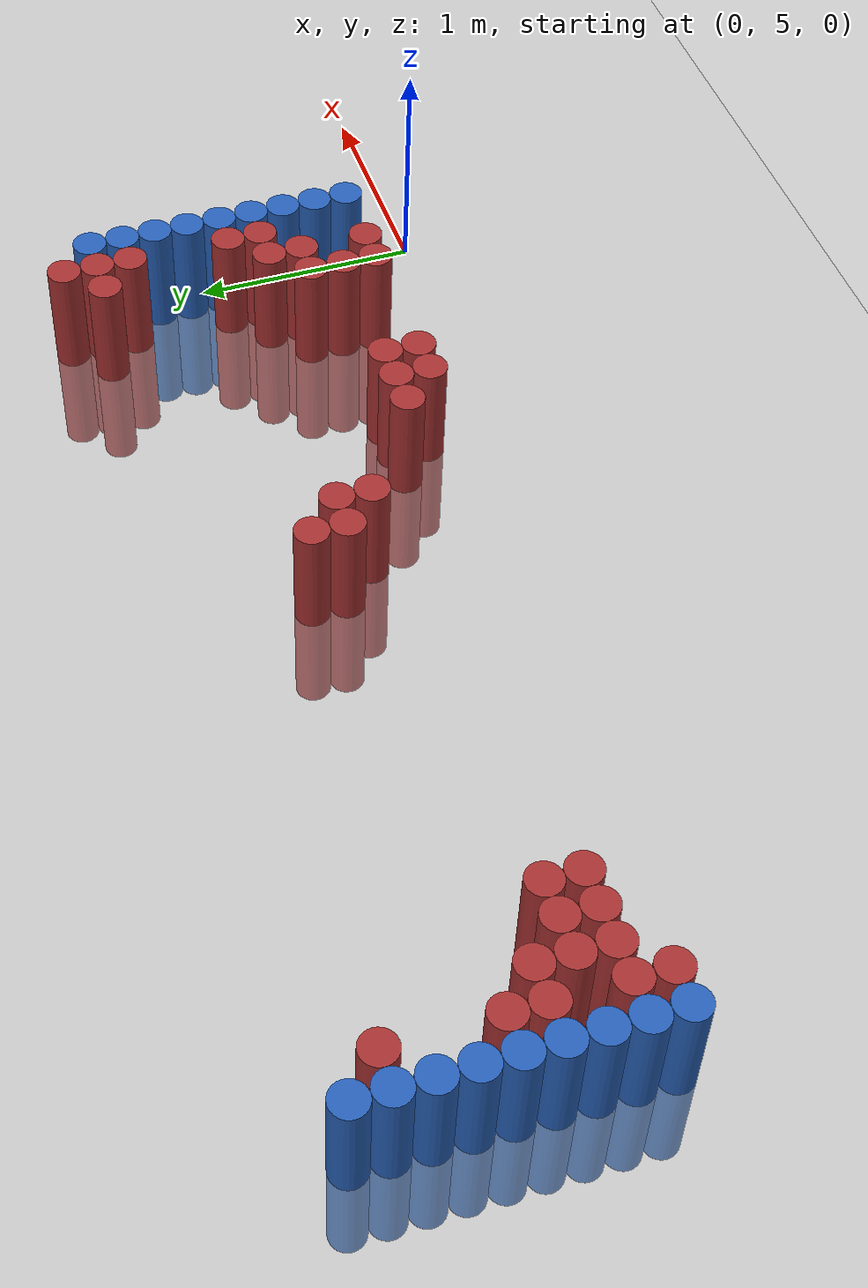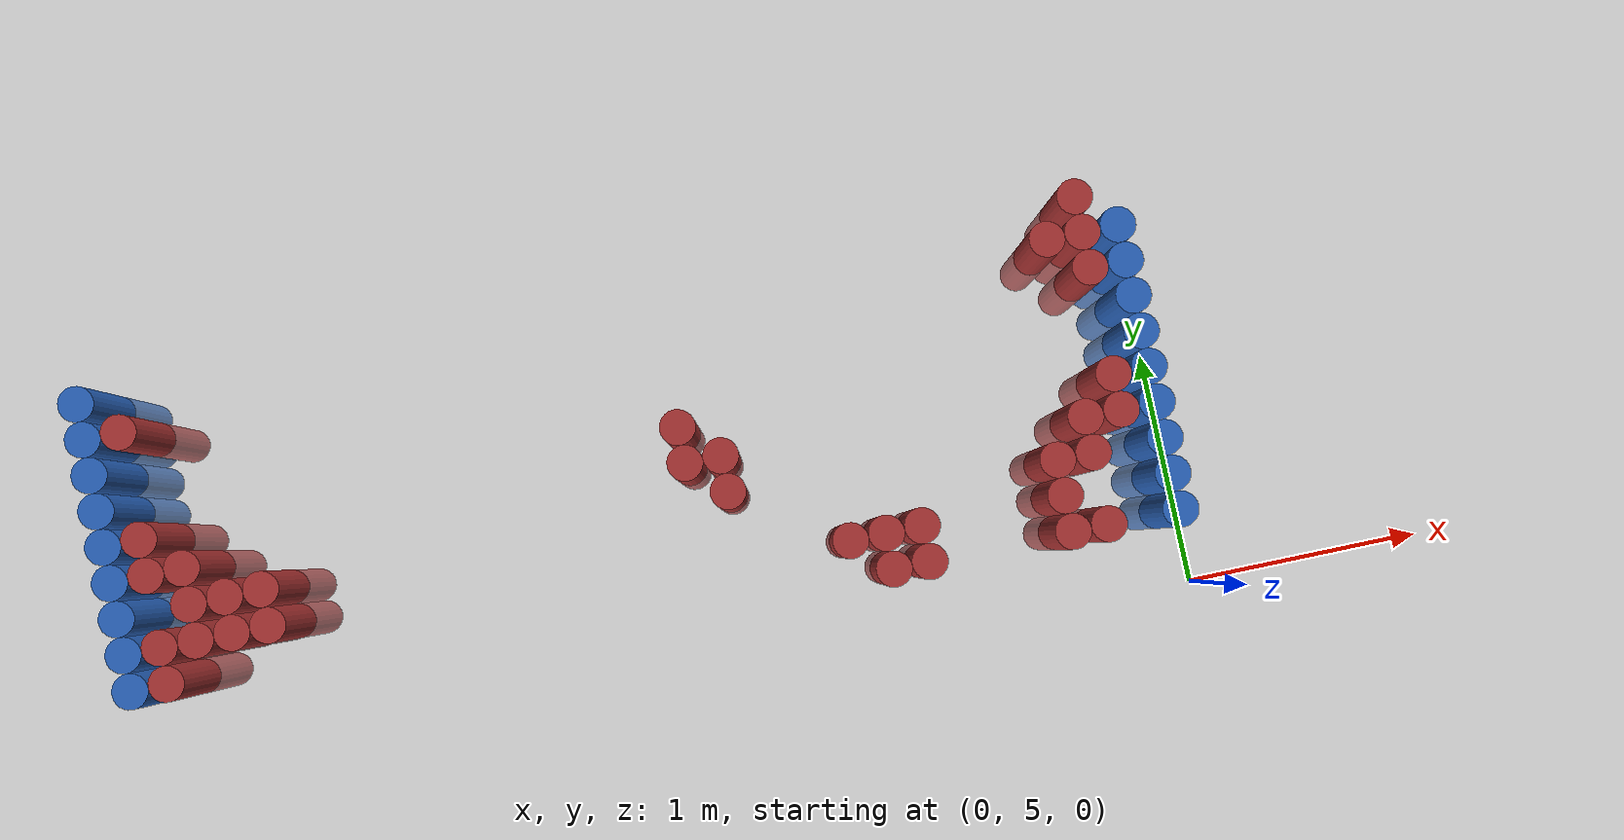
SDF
<sdf version="1.6">
 <world name="default">
  <model name="ground_plane">
   <static>1</static>
   <link name="link">
    <collision name="collision">
     <geometry><plane><normal>0 0 1</normal><size>100 100</size></plane></geometry>
     <surface><friction><ode><mu>100</mu><mu2>50</mu2></ode></friction></surface>
    </collision>
    <visual name="visual">
     <cast_shadows>0</cast_shadows>
     <geometry><plane><normal>0 0 1</normal><size>100 100</size></plane></geometry>
     <material>
      <script><uri>file://media/materials/scripts/gazebo.material</uri><name>Gazebo/Grey</name></script>
     </material>
    </visual>
   </link>
  </model>
  <model name="unit_cylinder_98">
   <static>1</static>
   <pose>-4.425000 5.475000 0.000000 0.000000 0.000000 0.000000</pose>
   <link name="link">
    <inertial>
     <mass>1</mass>
     <inertia><ixx>0.145833</ixx><ixy>0</ixy><ixz>0</ixz><iyy>0.145833</iyy><iyz>0</iyz><izz>0.125</izz></inertia>
    </inertial>
    <collision name="collision">
     <geometry><cylinder><radius>0.075000</radius><length>1</length></cylinder></geometry>
    </collision>
    <visual name="visual">
     <geometry><cylinder><radius>0.075000</radius><length>1</length></cylinder></geometry>
     <material>
      <ambient>0.152000 0.379000 0.720000 1</ambient>
      <diffuse>0.152000 0.379000 0.720000 1</diffuse>
     </material>
     <material>
      <script><name>Gazebo/Grey</name><uri>file://media/materials/scripts/gazebo.material</uri></script>
     </material>
    </visual>
   </link>
  </model>
  <model name="unit_cylinder_99">
   <static>1</static>
   <pose>-4.425000 5.625000 0.000000 0.000000 0.000000 0.000000</pose>
   <link name="link">
    <inertial>
     <mass>1</mass>
     <inertia><ixx>0.145833</ixx><ixy>0</ixy><ixz>0</ixz><iyy>0.145833</iyy><iyz>0</iyz><izz>0.125</izz></inertia>
    </inertial>
    <collision name="collision">
     <geometry><cylinder><radius>0.075000</radius><length>1</length></cylinder></geometry>
    </collision>
    <visual name="visual">
     <geometry><cylinder><radius>0.075000</radius><length>1</length></cylinder></geometry>
     <material>
      <ambient>0.152000 0.379000 0.720000 1</ambient>
      <diffuse>0.152000 0.379000 0.720000 1</diffuse>
     </material>
     <material>
      <script><name>Gazebo/Grey</name><uri>file://media/materials/scripts/gazebo.material</uri></script>
     </material>
    </visual>
   </link>
  </model>
  <model name="unit_cylinder_100">
   <static>1</static>
   <pose>-4.425000 5.775000 0.000000 0.000000 0.000000 0.000000</pose>
   <link name="link">
    <inertial>
     <mass>1</mass>
     <inertia><ixx>0.145833</ixx><ixy>0</ixy><ixz>0</ixz><iyy>0.145833</iyy><iyz>0</iyz><izz>0.125</izz></inertia>
    </inertial>
    <collision name="collision">
     <geometry><cylinder><radius>0.075000</radius><length>1</length></cylinder></geometry>
    </collision>
    <visual name="visual">
     <geometry><cylinder><radius>0.075000</radius><length>1</length></cylinder></geometry>
     <material>
      <ambient>0.152000 0.379000 0.720000 1</ambient>
      <diffuse>0.152000 0.379000 0.720000 1</diffuse>
     </material>
     <material>
      <script><name>Gazebo/Grey</name><uri>file://media/materials/scripts/gazebo.material</uri></script>
     </material>
    </visual>
   </link>
  </model>
  <model name="unit_cylinder_101">
   <static>1</static>
   <pose>-4.425000 5.925000 0.000000 0.000000 0.000000 0.000000</pose>
   <link name="link">
    <inertial>
     <mass>1</mass>
     <inertia><ixx>0.145833</ixx><ixy>0</ixy><ixz>0</ixz><iyy>0.145833</iyy><iyz>0</iyz><izz>0.125</izz></inertia>
    </inertial>
    <collision name="collision">
     <geometry><cylinder><radius>0.075000</radius><length>1</length></cylinder></geometry>
    </collision>
    <visual name="visual">
     <geometry><cylinder><radius>0.075000</radius><length>1</length></cylinder></geometry>
     <material>
      <ambient>0.152000 0.379000 0.720000 1</ambient>
      <diffuse>0.152000 0.379000 0.720000 1</diffuse>
     </material>
     <material>
      <script><name>Gazebo/Grey</name><uri>file://media/materials/scripts/gazebo.material</uri></script>
     </material>
    </visual>
   </link>
  </model>
  <model name="unit_cylinder_102">
   <static>1</static>
   <pose>-4.425000 6.075000 0.000000 0.000000 0.000000 0.000000</pose>
   <link name="link">
    <inertial>
     <mass>1</mass>
     <inertia><ixx>0.145833</ixx><ixy>0</ixy><ixz>0</ixz><iyy>0.145833</iyy><iyz>0</iyz><izz>0.125</izz></inertia>
    </inertial>
    <collision name="collision">
     <geometry><cylinder><radius>0.075000</radius><length>1</length></cylinder></geometry>
    </collision>
    <visual name="visual">
     <geometry><cylinder><radius>0.075000</radius><length>1</length></cylinder></geometry>
     <material>
      <ambient>0.152000 0.379000 0.720000 1</ambient>
      <diffuse>0.152000 0.379000 0.720000 1</diffuse>
     </material>
     <material>
      <script><name>Gazebo/Grey</name><uri>file://media/materials/scripts/gazebo.material</uri></script>
     </material>
    </visual>
   </link>
  </model>
  <model name="unit_cylinder_103">
   <static>1</static>
   <pose>-4.425000 6.225000 0.000000 0.000000 0.000000 0.000000</pose>
   <link name="link">
    <inertial>
     <mass>1</mass>
     <inertia><ixx>0.145833</ixx><ixy>0</ixy><ixz>0</ixz><iyy>0.145833</iyy><iyz>0</iyz><izz>0.125</izz></inertia>
    </inertial>
    <collision name="collision">
     <geometry><cylinder><radius>0.075000</radius><length>1</length></cylinder></geometry>
    </collision>
    <visual name="visual">
     <geometry><cylinder><radius>0.075000</radius><length>1</length></cylinder></geometry>
     <material>
      <ambient>0.152000 0.379000 0.720000 1</ambient>
      <diffuse>0.152000 0.379000 0.720000 1</diffuse>
     </material>
     <material>
      <script><name>Gazebo/Grey</name><uri>file://media/materials/scripts/gazebo.material</uri></script>
     </material>
    </visual>
   </link>
  </model>
  <model name="unit_cylinder_104">
   <static>1</static>
   <pose>-4.425000 6.375000 0.000000 0.000000 0.000000 0.000000</pose>
   <link name="link">
    <inertial>
     <mass>1</mass>
     <inertia><ixx>0.145833</ixx><ixy>0</ixy><ixz>0</ixz><iyy>0.145833</iyy><iyz>0</iyz><izz>0.125</izz></inertia>
    </inertial>
    <collision name="collision">
     <geometry><cylinder><radius>0.075000</radius><length>1</length></cylinder></geometry>
    </collision>
    <visual name="visual">
     <geometry><cylinder><radius>0.075000</radius><length>1</length></cylinder></geometry>
     <material>
      <ambient>0.152000 0.379000 0.720000 1</ambient>
      <diffuse>0.152000 0.379000 0.720000 1</diffuse>
     </material>
     <material>
      <script><name>Gazebo/Grey</name><uri>file://media/materials/scripts/gazebo.material</uri></script>
     </material>
    </visual>
   </link>
  </model>
  <model name="unit_cylinder_105">
   <static>1</static>
   <pose>-4.425000 6.525000 0.000000 0.000000 0.000000 0.000000</pose>
   <link name="link">
    <inertial>
     <mass>1</mass>
     <inertia><ixx>0.145833</ixx><ixy>0</ixy><ixz>0</ixz><iyy>0.145833</iyy><iyz>0</iyz><izz>0.125</izz></inertia>
    </inertial>
    <collision name="collision">
     <geometry><cylinder><radius>0.075000</radius><length>1</length></cylinder></geometry>
    </collision>
    <visual name="visual">
     <geometry><cylinder><radius>0.075000</radius><length>1</length></cylinder></geometry>
     <material>
      <ambient>0.152000 0.379000 0.720000 1</ambient>
      <diffuse>0.152000 0.379000 0.720000 1</diffuse>
     </material>
     <material>
      <script><name>Gazebo/Grey</name><uri>file://media/materials/scripts/gazebo.material</uri></script>
     </material>
    </visual>
   </link>
  </model>
  <model name="unit_cylinder_106">
   <static>1</static>
   <pose>-4.425000 6.675000 0.000000 0.000000 0.000000 0.000000</pose>
   <link name="link">
    <inertial>
     <mass>1</mass>
     <inertia><ixx>0.145833</ixx><ixy>0</ixy><ixz>0</ixz><iyy>0.145833</iyy><iyz>0</iyz><izz>0.125</izz></inertia>
    </inertial>
    <collision name="collision">
     <geometry><cylinder><radius>0.075000</radius><length>1</length></cylinder></geometry>
    </collision>
    <visual name="visual">
     <geometry><cylinder><radius>0.075000</radius><length>1</length></cylinder></geometry>
     <material>
      <ambient>0.152000 0.379000 0.720000 1</ambient>
      <diffuse>0.152000 0.379000 0.720000 1</diffuse>
     </material>
     <material>
      <script><name>Gazebo/Grey</name><uri>file://media/materials/scripts/gazebo.material</uri></script>
     </material>
    </visual>
   </link>
  </model>
  <model name="unit_cylinder_126">
   <static>1</static>
   <pose>-4.275000 5.475000 0.000000 0.000000 0.000000 0.000000</pose>
   <link name="link">
    <inertial>
     <mass>1</mass>
     <inertia><ixx>0.145833</ixx><ixy>0</ixy><ixz>0</ixz><iyy>0.145833</iyy><iyz>0</iyz><izz>0.125</izz></inertia>
    </inertial>
    <collision name="collision">
     <geometry><cylinder><radius>0.075000</radius><length>1</length></cylinder></geometry>
    </collision>
    <visual name="visual">
     <geometry><cylinder><radius>0.075000</radius><length>1</length></cylinder></geometry>
     <material>
      <ambient>0.648000 0.192000 0.192000 1</ambient>
      <diffuse>0.648000 0.192000 0.192000 1</diffuse>
     </material>
     <material>
      <script><name>Gazebo/Grey</name><uri>file://media/materials/scripts/gazebo.material</uri></script>
     </material>
    </visual>
   </link>
  </model>
  <model name="unit_cylinder_127">
   <static>1</static>
   <pose>-4.275000 5.625000 0.000000 0.000000 0.000000 0.000000</pose>
   <link name="link">
    <inertial>
     <mass>1</mass>
     <inertia><ixx>0.145833</ixx><ixy>0</ixy><ixz>0</ixz><iyy>0.145833</iyy><iyz>0</iyz><izz>0.125</izz></inertia>
    </inertial>
    <collision name="collision">
     <geometry><cylinder><radius>0.075000</radius><length>1</length></cylinder></geometry>
    </collision>
    <visual name="visual">
     <geometry><cylinder><radius>0.075000</radius><length>1</length></cylinder></geometry>
     <material>
      <ambient>0.648000 0.192000 0.192000 1</ambient>
      <diffuse>0.648000 0.192000 0.192000 1</diffuse>
     </material>
     <material>
      <script><name>Gazebo/Grey</name><uri>file://media/materials/scripts/gazebo.material</uri></script>
     </material>
    </visual>
   </link>
  </model>
  <model name="unit_cylinder_128">
   <static>1</static>
   <pose>-4.275000 5.925000 0.000000 0.000000 0.000000 0.000000</pose>
   <link name="link">
    <inertial>
     <mass>1</mass>
     <inertia><ixx>0.145833</ixx><ixy>0</ixy><ixz>0</ixz><iyy>0.145833</iyy><iyz>0</iyz><izz>0.125</izz></inertia>
    </inertial>
    <collision name="collision">
     <geometry><cylinder><radius>0.075000</radius><length>1</length></cylinder></geometry>
    </collision>
    <visual name="visual">
     <geometry><cylinder><radius>0.075000</radius><length>1</length></cylinder></geometry>
     <material>
      <ambient>0.648000 0.192000 0.192000 1</ambient>
      <diffuse>0.648000 0.192000 0.192000 1</diffuse>
     </material>
     <material>
      <script><name>Gazebo/Grey</name><uri>file://media/materials/scripts/gazebo.material</uri></script>
     </material>
    </visual>
   </link>
  </model>
  <model name="unit_cylinder_129">
   <static>1</static>
   <pose>-4.275000 6.075000 0.000000 0.000000 0.000000 0.000000</pose>
   <link name="link">
    <inertial>
     <mass>1</mass>
     <inertia><ixx>0.145833</ixx><ixy>0</ixy><ixz>0</ixz><iyy>0.145833</iyy><iyz>0</iyz><izz>0.125</izz></inertia>
    </inertial>
    <collision name="collision">
     <geometry><cylinder><radius>0.075000</radius><length>1</length></cylinder></geometry>
    </collision>
    <visual name="visual">
     <geometry><cylinder><radius>0.075000</radius><length>1</length></cylinder></geometry>
     <material>
      <ambient>0.648000 0.192000 0.192000 1</ambient>
      <diffuse>0.648000 0.192000 0.192000 1</diffuse>
     </material>
     <material>
      <script><name>Gazebo/Grey</name><uri>file://media/materials/scripts/gazebo.material</uri></script>
     </material>
    </visual>
   </link>
  </model>
  <model name="unit_cylinder_130">
   <static>1</static>
   <pose>-4.275000 6.525000 0.000000 0.000000 0.000000 0.000000</pose>
   <link name="link">
    <inertial>
     <mass>1</mass>
     <inertia><ixx>0.145833</ixx><ixy>0</ixy><ixz>0</ixz><iyy>0.145833</iyy><iyz>0</iyz><izz>0.125</izz></inertia>
    </inertial>
    <collision name="collision">
     <geometry><cylinder><radius>0.075000</radius><length>1</length></cylinder></geometry>
    </collision>
    <visual name="visual">
     <geometry><cylinder><radius>0.075000</radius><length>1</length></cylinder></geometry>
     <material>
      <ambient>0.648000 0.192000 0.192000 1</ambient>
      <diffuse>0.648000 0.192000 0.192000 1</diffuse>
     </material>
     <material>
      <script><name>Gazebo/Grey</name><uri>file://media/materials/scripts/gazebo.material</uri></script>
     </material>
    </visual>
   </link>
  </model>
  <model name="unit_cylinder_143">
   <static>1</static>
   <pose>-4.125000 5.625000 0.000000 0.000000 0.000000 0.000000</pose>
   <link name="link">
    <inertial>
     <mass>1</mass>
     <inertia><ixx>0.145833</ixx><ixy>0</ixy><ixz>0</ixz><iyy>0.145833</iyy><iyz>0</iyz><izz>0.125</izz></inertia>
    </inertial>
    <collision name="collision">
     <geometry><cylinder><radius>0.075000</radius><length>1</length></cylinder></geometry>
    </collision>
    <visual name="visual">
     <geometry><cylinder><radius>0.075000</radius><length>1</length></cylinder></geometry>
     <material>
      <ambient>0.648000 0.192000 0.192000 1</ambient>
      <diffuse>0.648000 0.192000 0.192000 1</diffuse>
     </material>
     <material>
      <script><name>Gazebo/Grey</name><uri>file://media/materials/scripts/gazebo.material</uri></script>
     </material>
    </visual>
   </link>
  </model>
  <model name="unit_cylinder_144">
   <static>1</static>
   <pose>-4.125000 5.775000 0.000000 0.000000 0.000000 0.000000</pose>
   <link name="link">
    <inertial>
     <mass>1</mass>
     <inertia><ixx>0.145833</ixx><ixy>0</ixy><ixz>0</ixz><iyy>0.145833</iyy><iyz>0</iyz><izz>0.125</izz></inertia>
    </inertial>
    <collision name="collision">
     <geometry><cylinder><radius>0.075000</radius><length>1</length></cylinder></geometry>
    </collision>
    <visual name="visual">
     <geometry><cylinder><radius>0.075000</radius><length>1</length></cylinder></geometry>
     <material>
      <ambient>0.648000 0.192000 0.192000 1</ambient>
      <diffuse>0.648000 0.192000 0.192000 1</diffuse>
     </material>
     <material>
      <script><name>Gazebo/Grey</name><uri>file://media/materials/scripts/gazebo.material</uri></script>
     </material>
    </visual>
   </link>
  </model>
  <model name="unit_cylinder_145">
   <static>1</static>
   <pose>-4.125000 5.925000 0.000000 0.000000 0.000000 0.000000</pose>
   <link name="link">
    <inertial>
     <mass>1</mass>
     <inertia><ixx>0.145833</ixx><ixy>0</ixy><ixz>0</ixz><iyy>0.145833</iyy><iyz>0</iyz><izz>0.125</izz></inertia>
    </inertial>
    <collision name="collision">
     <geometry><cylinder><radius>0.075000</radius><length>1</length></cylinder></geometry>
    </collision>
    <visual name="visual">
     <geometry><cylinder><radius>0.075000</radius><length>1</length></cylinder></geometry>
     <material>
      <ambient>0.648000 0.192000 0.192000 1</ambient>
      <diffuse>0.648000 0.192000 0.192000 1</diffuse>
     </material>
     <material>
      <script><name>Gazebo/Grey</name><uri>file://media/materials/scripts/gazebo.material</uri></script>
     </material>
    </visual>
   </link>
  </model>
  <model name="unit_cylinder_151">
   <static>1</static>
   <pose>-3.975000 5.625000 0.000000 0.000000 0.000000 0.000000</pose>
   <link name="link">
    <inertial>
     <mass>1</mass>
     <inertia><ixx>0.145833</ixx><ixy>0</ixy><ixz>0</ixz><iyy>0.145833</iyy><iyz>0</iyz><izz>0.125</izz></inertia>
    </inertial>
    <collision name="collision">
     <geometry><cylinder><radius>0.075000</radius><length>1</length></cylinder></geometry>
    </collision>
    <visual name="visual">
     <geometry><cylinder><radius>0.075000</radius><length>1</length></cylinder></geometry>
     <material>
      <ambient>0.648000 0.192000 0.192000 1</ambient>
      <diffuse>0.648000 0.192000 0.192000 1</diffuse>
     </material>
     <material>
      <script><name>Gazebo/Grey</name><uri>file://media/materials/scripts/gazebo.material</uri></script>
     </material>
    </visual>
   </link>
  </model>
  <model name="unit_cylinder_152">
   <static>1</static>
   <pose>-3.975000 5.775000 0.000000 0.000000 0.000000 0.000000</pose>
   <link name="link">
    <inertial>
     <mass>1</mass>
     <inertia><ixx>0.145833</ixx><ixy>0</ixy><ixz>0</ixz><iyy>0.145833</iyy><iyz>0</iyz><izz>0.125</izz></inertia>
    </inertial>
    <collision name="collision">
     <geometry><cylinder><radius>0.075000</radius><length>1</length></cylinder></geometry>
    </collision>
    <visual name="visual">
     <geometry><cylinder><radius>0.075000</radius><length>1</length></cylinder></geometry>
     <material>
      <ambient>0.648000 0.192000 0.192000 1</ambient>
      <diffuse>0.648000 0.192000 0.192000 1</diffuse>
     </material>
     <material>
      <script><name>Gazebo/Grey</name><uri>file://media/materials/scripts/gazebo.material</uri></script>
     </material>
    </visual>
   </link>
  </model>
  <model name="unit_cylinder_154">
   <static>1</static>
   <pose>-3.825000 5.625000 0.000000 0.000000 0.000000 0.000000</pose>
   <link name="link">
    <inertial>
     <mass>1</mass>
     <inertia><ixx>0.145833</ixx><ixy>0</ixy><ixz>0</ixz><iyy>0.145833</iyy><iyz>0</iyz><izz>0.125</izz></inertia>
    </inertial>
    <collision name="collision">
     <geometry><cylinder><radius>0.075000</radius><length>1</length></cylinder></geometry>
    </collision>
    <visual name="visual">
     <geometry><cylinder><radius>0.075000</radius><length>1</length></cylinder></geometry>
     <material>
      <ambient>0.648000 0.192000 0.192000 1</ambient>
      <diffuse>0.648000 0.192000 0.192000 1</diffuse>
     </material>
     <material>
      <script><name>Gazebo/Grey</name><uri>file://media/materials/scripts/gazebo.material</uri></script>
     </material>
    </visual>
   </link>
  </model>
  <model name="unit_cylinder_155">
   <static>1</static>
   <pose>-3.825000 5.775000 0.000000 0.000000 0.000000 0.000000</pose>
   <link name="link">
    <inertial>
     <mass>1</mass>
     <inertia><ixx>0.145833</ixx><ixy>0</ixy><ixz>0</ixz><iyy>0.145833</iyy><iyz>0</iyz><izz>0.125</izz></inertia>
    </inertial>
    <collision name="collision">
     <geometry><cylinder><radius>0.075000</radius><length>1</length></cylinder></geometry>
    </collision>
    <visual name="visual">
     <geometry><cylinder><radius>0.075000</radius><length>1</length></cylinder></geometry>
     <material>
      <ambient>0.648000 0.192000 0.192000 1</ambient>
      <diffuse>0.648000 0.192000 0.192000 1</diffuse>
     </material>
     <material>
      <script><name>Gazebo/Grey</name><uri>file://media/materials/scripts/gazebo.material</uri></script>
     </material>
    </visual>
   </link>
  </model>
  <model name="unit_cylinder_184">
   <static>1</static>
   <pose>-2.025000 5.925000 0.000000 0.000000 0.000000 0.000000</pose>
   <link name="link">
    <inertial>
     <mass>1</mass>
     <inertia><ixx>0.145833</ixx><ixy>0</ixy><ixz>0</ixz><iyy>0.145833</iyy><iyz>0</iyz><izz>0.125</izz></inertia>
    </inertial>
    <collision name="collision">
     <geometry><cylinder><radius>0.075000</radius><length>1</length></cylinder></geometry>
    </collision>
    <visual name="visual">
     <geometry><cylinder><radius>0.075000</radius><length>1</length></cylinder></geometry>
     <material>
      <ambient>0.648000 0.192000 0.192000 1</ambient>
      <diffuse>0.648000 0.192000 0.192000 1</diffuse>
     </material>
     <material>
      <script><name>Gazebo/Grey</name><uri>file://media/materials/scripts/gazebo.material</uri></script>
     </material>
    </visual>
   </link>
  </model>
  <model name="unit_cylinder_185">
   <static>1</static>
   <pose>-2.025000 6.075000 0.000000 0.000000 0.000000 0.000000</pose>
   <link name="link">
    <inertial>
     <mass>1</mass>
     <inertia><ixx>0.145833</ixx><ixy>0</ixy><ixz>0</ixz><iyy>0.145833</iyy><iyz>0</iyz><izz>0.125</izz></inertia>
    </inertial>
    <collision name="collision">
     <geometry><cylinder><radius>0.075000</radius><length>1</length></cylinder></geometry>
    </collision>
    <visual name="visual">
     <geometry><cylinder><radius>0.075000</radius><length>1</length></cylinder></geometry>
     <material>
      <ambient>0.648000 0.192000 0.192000 1</ambient>
      <diffuse>0.648000 0.192000 0.192000 1</diffuse>
     </material>
     <material>
      <script><name>Gazebo/Grey</name><uri>file://media/materials/scripts/gazebo.material</uri></script>
     </material>
    </visual>
   </link>
  </model>
  <model name="unit_cylinder_190">
   <static>1</static>
   <pose>-1.875000 5.775000 0.000000 0.000000 0.000000 0.000000</pose>
   <link name="link">
    <inertial>
     <mass>1</mass>
     <inertia><ixx>0.145833</ixx><ixy>0</ixy><ixz>0</ixz><iyy>0.145833</iyy><iyz>0</iyz><izz>0.125</izz></inertia>
    </inertial>
    <collision name="collision">
     <geometry><cylinder><radius>0.075000</radius><length>1</length></cylinder></geometry>
    </collision>
    <visual name="visual">
     <geometry><cylinder><radius>0.075000</radius><length>1</length></cylinder></geometry>
     <material>
      <ambient>0.648000 0.192000 0.192000 1</ambient>
      <diffuse>0.648000 0.192000 0.192000 1</diffuse>
     </material>
     <material>
      <script><name>Gazebo/Grey</name><uri>file://media/materials/scripts/gazebo.material</uri></script>
     </material>
    </visual>
   </link>
  </model>
  <model name="unit_cylinder_191">
   <static>1</static>
   <pose>-1.875000 5.925000 0.000000 0.000000 0.000000 0.000000</pose>
   <link name="link">
    <inertial>
     <mass>1</mass>
     <inertia><ixx>0.145833</ixx><ixy>0</ixy><ixz>0</ixz><iyy>0.145833</iyy><iyz>0</iyz><izz>0.125</izz></inertia>
    </inertial>
    <collision name="collision">
     <geometry><cylinder><radius>0.075000</radius><length>1</length></cylinder></geometry>
    </collision>
    <visual name="visual">
     <geometry><cylinder><radius>0.075000</radius><length>1</length></cylinder></geometry>
     <material>
      <ambient>0.648000 0.192000 0.192000 1</ambient>
      <diffuse>0.648000 0.192000 0.192000 1</diffuse>
     </material>
     <material>
      <script><name>Gazebo/Grey</name><uri>file://media/materials/scripts/gazebo.material</uri></script>
     </material>
    </visual>
   </link>
  </model>
  <model name="unit_cylinder_213">
   <static>1</static>
   <pose>-1.425000 5.475000 0.000000 0.000000 0.000000 0.000000</pose>
   <link name="link">
    <inertial>
     <mass>1</mass>
     <inertia><ixx>0.145833</ixx><ixy>0</ixy><ixz>0</ixz><iyy>0.145833</iyy><iyz>0</iyz><izz>0.125</izz></inertia>
    </inertial>
    <collision name="collision">
     <geometry><cylinder><radius>0.075000</radius><length>1</length></cylinder></geometry>
    </collision>
    <visual name="visual">
     <geometry><cylinder><radius>0.075000</radius><length>1</length></cylinder></geometry>
     <material>
      <ambient>0.648000 0.192000 0.192000 1</ambient>
      <diffuse>0.648000 0.192000 0.192000 1</diffuse>
     </material>
     <material>
      <script><name>Gazebo/Grey</name><uri>file://media/materials/scripts/gazebo.material</uri></script>
     </material>
    </visual>
   </link>
  </model>
  <model name="unit_cylinder_218">
   <static>1</static>
   <pose>-1.275000 5.325000 0.000000 0.000000 0.000000 0.000000</pose>
   <link name="link">
    <inertial>
     <mass>1</mass>
     <inertia><ixx>0.145833</ixx><ixy>0</ixy><ixz>0</ixz><iyy>0.145833</iyy><iyz>0</iyz><izz>0.125</izz></inertia>
    </inertial>
    <collision name="collision">
     <geometry><cylinder><radius>0.075000</radius><length>1</length></cylinder></geometry>
    </collision>
    <visual name="visual">
     <geometry><cylinder><radius>0.075000</radius><length>1</length></cylinder></geometry>
     <material>
      <ambient>0.648000 0.192000 0.192000 1</ambient>
      <diffuse>0.648000 0.192000 0.192000 1</diffuse>
     </material>
     <material>
      <script><name>Gazebo/Grey</name><uri>file://media/materials/scripts/gazebo.material</uri></script>
     </material>
    </visual>
   </link>
  </model>
  <model name="unit_cylinder_219">
   <static>1</static>
   <pose>-1.275000 5.475000 0.000000 0.000000 0.000000 0.000000</pose>
   <link name="link">
    <inertial>
     <mass>1</mass>
     <inertia><ixx>0.145833</ixx><ixy>0</ixy><ixz>0</ixz><iyy>0.145833</iyy><iyz>0</iyz><izz>0.125</izz></inertia>
    </inertial>
    <collision name="collision">
     <geometry><cylinder><radius>0.075000</radius><length>1</length></cylinder></geometry>
    </collision>
    <visual name="visual">
     <geometry><cylinder><radius>0.075000</radius><length>1</length></cylinder></geometry>
     <material>
      <ambient>0.648000 0.192000 0.192000 1</ambient>
      <diffuse>0.648000 0.192000 0.192000 1</diffuse>
     </material>
     <material>
      <script><name>Gazebo/Grey</name><uri>file://media/materials/scripts/gazebo.material</uri></script>
     </material>
    </visual>
   </link>
  </model>
  <model name="unit_cylinder_223">
   <static>1</static>
   <pose>-1.125000 5.325000 0.000000 0.000000 0.000000 0.000000</pose>
   <link name="link">
    <inertial>
     <mass>1</mass>
     <inertia><ixx>0.145833</ixx><ixy>0</ixy><ixz>0</ixz><iyy>0.145833</iyy><iyz>0</iyz><izz>0.125</izz></inertia>
    </inertial>
    <collision name="collision">
     <geometry><cylinder><radius>0.075000</radius><length>1</length></cylinder></geometry>
    </collision>
    <visual name="visual">
     <geometry><cylinder><radius>0.075000</radius><length>1</length></cylinder></geometry>
     <material>
      <ambient>0.648000 0.192000 0.192000 1</ambient>
      <diffuse>0.648000 0.192000 0.192000 1</diffuse>
     </material>
     <material>
      <script><name>Gazebo/Grey</name><uri>file://media/materials/scripts/gazebo.material</uri></script>
     </material>
    </visual>
   </link>
  </model>
  <model name="unit_cylinder_224">
   <static>1</static>
   <pose>-1.125000 5.475000 0.000000 0.000000 0.000000 0.000000</pose>
   <link name="link">
    <inertial>
     <mass>1</mass>
     <inertia><ixx>0.145833</ixx><ixy>0</ixy><ixz>0</ixz><iyy>0.145833</iyy><iyz>0</iyz><izz>0.125</izz></inertia>
    </inertial>
    <collision name="collision">
     <geometry><cylinder><radius>0.075000</radius><length>1</length></cylinder></geometry>
    </collision>
    <visual name="visual">
     <geometry><cylinder><radius>0.075000</radius><length>1</length></cylinder></geometry>
     <material>
      <ambient>0.648000 0.192000 0.192000 1</ambient>
      <diffuse>0.648000 0.192000 0.192000 1</diffuse>
     </material>
     <material>
      <script><name>Gazebo/Grey</name><uri>file://media/materials/scripts/gazebo.material</uri></script>
     </material>
    </visual>
   </link>
  </model>
  <model name="unit_cylinder_247">
   <static>1</static>
   <pose>-0.525000 5.325000 0.000000 0.000000 0.000000 0.000000</pose>
   <link name="link">
    <inertial>
     <mass>1</mass>
     <inertia><ixx>0.145833</ixx><ixy>0</ixy><ixz>0</ixz><iyy>0.145833</iyy><iyz>0</iyz><izz>0.125</izz></inertia>
    </inertial>
    <collision name="collision">
     <geometry><cylinder><radius>0.075000</radius><length>1</length></cylinder></geometry>
    </collision>
    <visual name="visual">
     <geometry><cylinder><radius>0.075000</radius><length>1</length></cylinder></geometry>
     <material>
      <ambient>0.648000 0.192000 0.192000 1</ambient>
      <diffuse>0.648000 0.192000 0.192000 1</diffuse>
     </material>
     <material>
      <script><name>Gazebo/Grey</name><uri>file://media/materials/scripts/gazebo.material</uri></script>
     </material>
    </visual>
   </link>
  </model>
  <model name="unit_cylinder_248">
   <static>1</static>
   <pose>-0.525000 5.475000 0.000000 0.000000 0.000000 0.000000</pose>
   <link name="link">
    <inertial>
     <mass>1</mass>
     <inertia><ixx>0.145833</ixx><ixy>0</ixy><ixz>0</ixz><iyy>0.145833</iyy><iyz>0</iyz><izz>0.125</izz></inertia>
    </inertial>
    <collision name="collision">
     <geometry><cylinder><radius>0.075000</radius><length>1</length></cylinder></geometry>
    </collision>
    <visual name="visual">
     <geometry><cylinder><radius>0.075000</radius><length>1</length></cylinder></geometry>
     <material>
      <ambient>0.648000 0.192000 0.192000 1</ambient>
      <diffuse>0.648000 0.192000 0.192000 1</diffuse>
     </material>
     <material>
      <script><name>Gazebo/Grey</name><uri>file://media/materials/scripts/gazebo.material</uri></script>
     </material>
    </visual>
   </link>
  </model>
  <model name="unit_cylinder_249">
   <static>1</static>
   <pose>-0.525000 5.625000 0.000000 0.000000 0.000000 0.000000</pose>
   <link name="link">
    <inertial>
     <mass>1</mass>
     <inertia><ixx>0.145833</ixx><ixy>0</ixy><ixz>0</ixz><iyy>0.145833</iyy><iyz>0</iyz><izz>0.125</izz></inertia>
    </inertial>
    <collision name="collision">
     <geometry><cylinder><radius>0.075000</radius><length>1</length></cylinder></geometry>
    </collision>
    <visual name="visual">
     <geometry><cylinder><radius>0.075000</radius><length>1</length></cylinder></geometry>
     <material>
      <ambient>0.648000 0.192000 0.192000 1</ambient>
      <diffuse>0.648000 0.192000 0.192000 1</diffuse>
     </material>
     <material>
      <script><name>Gazebo/Grey</name><uri>file://media/materials/scripts/gazebo.material</uri></script>
     </material>
    </visual>
   </link>
  </model>
  <model name="unit_cylinder_254">
   <static>1</static>
   <pose>-0.375000 5.325000 0.000000 0.000000 0.000000 0.000000</pose>
   <link name="link">
    <inertial>
     <mass>1</mass>
     <inertia><ixx>0.145833</ixx><ixy>0</ixy><ixz>0</ixz><iyy>0.145833</iyy><iyz>0</iyz><izz>0.125</izz></inertia>
    </inertial>
    <collision name="collision">
     <geometry><cylinder><radius>0.075000</radius><length>1</length></cylinder></geometry>
    </collision>
    <visual name="visual">
     <geometry><cylinder><radius>0.075000</radius><length>1</length></cylinder></geometry>
     <material>
      <ambient>0.648000 0.192000 0.192000 1</ambient>
      <diffuse>0.648000 0.192000 0.192000 1</diffuse>
     </material>
     <material>
      <script><name>Gazebo/Grey</name><uri>file://media/materials/scripts/gazebo.material</uri></script>
     </material>
    </visual>
   </link>
  </model>
  <model name="unit_cylinder_255">
   <static>1</static>
   <pose>-0.375000 5.625000 0.000000 0.000000 0.000000 0.000000</pose>
   <link name="link">
    <inertial>
     <mass>1</mass>
     <inertia><ixx>0.145833</ixx><ixy>0</ixy><ixz>0</ixz><iyy>0.145833</iyy><iyz>0</iyz><izz>0.125</izz></inertia>
    </inertial>
    <collision name="collision">
     <geometry><cylinder><radius>0.075000</radius><length>1</length></cylinder></geometry>
    </collision>
    <visual name="visual">
     <geometry><cylinder><radius>0.075000</radius><length>1</length></cylinder></geometry>
     <material>
      <ambient>0.648000 0.192000 0.192000 1</ambient>
      <diffuse>0.648000 0.192000 0.192000 1</diffuse>
     </material>
     <material>
      <script><name>Gazebo/Grey</name><uri>file://media/materials/scripts/gazebo.material</uri></script>
     </material>
    </visual>
   </link>
  </model>
  <model name="unit_cylinder_256">
   <static>1</static>
   <pose>-0.375000 5.775000 0.000000 0.000000 0.000000 0.000000</pose>
   <link name="link">
    <inertial>
     <mass>1</mass>
     <inertia><ixx>0.145833</ixx><ixy>0</ixy><ixz>0</ixz><iyy>0.145833</iyy><iyz>0</iyz><izz>0.125</izz></inertia>
    </inertial>
    <collision name="collision">
     <geometry><cylinder><radius>0.075000</radius><length>1</length></cylinder></geometry>
    </collision>
    <visual name="visual">
     <geometry><cylinder><radius>0.075000</radius><length>1</length></cylinder></geometry>
     <material>
      <ambient>0.648000 0.192000 0.192000 1</ambient>
      <diffuse>0.648000 0.192000 0.192000 1</diffuse>
     </material>
     <material>
      <script><name>Gazebo/Grey</name><uri>file://media/materials/scripts/gazebo.material</uri></script>
     </material>
    </visual>
   </link>
  </model>
  <model name="unit_cylinder_257">
   <static>1</static>
   <pose>-0.375000 6.525000 0.000000 0.000000 0.000000 0.000000</pose>
   <link name="link">
    <inertial>
     <mass>1</mass>
     <inertia><ixx>0.145833</ixx><ixy>0</ixy><ixz>0</ixz><iyy>0.145833</iyy><iyz>0</iyz><izz>0.125</izz></inertia>
    </inertial>
    <collision name="collision">
     <geometry><cylinder><radius>0.075000</radius><length>1</length></cylinder></geometry>
    </collision>
    <visual name="visual">
     <geometry><cylinder><radius>0.075000</radius><length>1</length></cylinder></geometry>
     <material>
      <ambient>0.648000 0.192000 0.192000 1</ambient>
      <diffuse>0.648000 0.192000 0.192000 1</diffuse>
     </material>
     <material>
      <script><name>Gazebo/Grey</name><uri>file://media/materials/scripts/gazebo.material</uri></script>
     </material>
    </visual>
   </link>
  </model>
  <model name="unit_cylinder_262">
   <static>1</static>
   <pose>-0.225000 5.775000 0.000000 0.000000 0.000000 0.000000</pose>
   <link name="link">
    <inertial>
     <mass>1</mass>
     <inertia><ixx>0.145833</ixx><ixy>0</ixy><ixz>0</ixz><iyy>0.145833</iyy><iyz>0</iyz><izz>0.125</izz></inertia>
    </inertial>
    <collision name="collision">
     <geometry><cylinder><radius>0.075000</radius><length>1</length></cylinder></geometry>
    </collision>
    <visual name="visual">
     <geometry><cylinder><radius>0.075000</radius><length>1</length></cylinder></geometry>
     <material>
      <ambient>0.648000 0.192000 0.192000 1</ambient>
      <diffuse>0.648000 0.192000 0.192000 1</diffuse>
     </material>
     <material>
      <script><name>Gazebo/Grey</name><uri>file://media/materials/scripts/gazebo.material</uri></script>
     </material>
    </visual>
   </link>
  </model>
  <model name="unit_cylinder_263">
   <static>1</static>
   <pose>-0.225000 5.925000 0.000000 0.000000 0.000000 0.000000</pose>
   <link name="link">
    <inertial>
     <mass>1</mass>
     <inertia><ixx>0.145833</ixx><ixy>0</ixy><ixz>0</ixz><iyy>0.145833</iyy><iyz>0</iyz><izz>0.125</izz></inertia>
    </inertial>
    <collision name="collision">
     <geometry><cylinder><radius>0.075000</radius><length>1</length></cylinder></geometry>
    </collision>
    <visual name="visual">
     <geometry><cylinder><radius>0.075000</radius><length>1</length></cylinder></geometry>
     <material>
      <ambient>0.648000 0.192000 0.192000 1</ambient>
      <diffuse>0.648000 0.192000 0.192000 1</diffuse>
     </material>
     <material>
      <script><name>Gazebo/Grey</name><uri>file://media/materials/scripts/gazebo.material</uri></script>
     </material>
    </visual>
   </link>
  </model>
  <model name="unit_cylinder_264">
   <static>1</static>
   <pose>-0.225000 6.375000 0.000000 0.000000 0.000000 0.000000</pose>
   <link name="link">
    <inertial>
     <mass>1</mass>
     <inertia><ixx>0.145833</ixx><ixy>0</ixy><ixz>0</ixz><iyy>0.145833</iyy><iyz>0</iyz><izz>0.125</izz></inertia>
    </inertial>
    <collision name="collision">
     <geometry><cylinder><radius>0.075000</radius><length>1</length></cylinder></geometry>
    </collision>
    <visual name="visual">
     <geometry><cylinder><radius>0.075000</radius><length>1</length></cylinder></geometry>
     <material>
      <ambient>0.648000 0.192000 0.192000 1</ambient>
      <diffuse>0.648000 0.192000 0.192000 1</diffuse>
     </material>
     <material>
      <script><name>Gazebo/Grey</name><uri>file://media/materials/scripts/gazebo.material</uri></script>
     </material>
    </visual>
   </link>
  </model>
  <model name="unit_cylinder_265">
   <static>1</static>
   <pose>-0.225000 6.525000 0.000000 0.000000 0.000000 0.000000</pose>
   <link name="link">
    <inertial>
     <mass>1</mass>
     <inertia><ixx>0.145833</ixx><ixy>0</ixy><ixz>0</ixz><iyy>0.145833</iyy><iyz>0</iyz><izz>0.125</izz></inertia>
    </inertial>
    <collision name="collision">
     <geometry><cylinder><radius>0.075000</radius><length>1</length></cylinder></geometry>
    </collision>
    <visual name="visual">
     <geometry><cylinder><radius>0.075000</radius><length>1</length></cylinder></geometry>
     <material>
      <ambient>0.648000 0.192000 0.192000 1</ambient>
      <diffuse>0.648000 0.192000 0.192000 1</diffuse>
     </material>
     <material>
      <script><name>Gazebo/Grey</name><uri>file://media/materials/scripts/gazebo.material</uri></script>
     </material>
    </visual>
   </link>
  </model>
  <model name="unit_cylinder_266">
   <static>1</static>
   <pose>-0.225000 6.675000 0.000000 0.000000 0.000000 0.000000</pose>
   <link name="link">
    <inertial>
     <mass>1</mass>
     <inertia><ixx>0.145833</ixx><ixy>0</ixy><ixz>0</ixz><iyy>0.145833</iyy><iyz>0</iyz><izz>0.125</izz></inertia>
    </inertial>
    <collision name="collision">
     <geometry><cylinder><radius>0.075000</radius><length>1</length></cylinder></geometry>
    </collision>
    <visual name="visual">
     <geometry><cylinder><radius>0.075000</radius><length>1</length></cylinder></geometry>
     <material>
      <ambient>0.648000 0.192000 0.192000 1</ambient>
      <diffuse>0.648000 0.192000 0.192000 1</diffuse>
     </material>
     <material>
      <script><name>Gazebo/Grey</name><uri>file://media/materials/scripts/gazebo.material</uri></script>
     </material>
    </visual>
   </link>
  </model>
  <model name="unit_cylinder_280">
   <static>1</static>
   <pose>-0.075000 5.325000 0.000000 0.000000 0.000000 0.000000</pose>
   <link name="link">
    <inertial>
     <mass>1</mass>
     <inertia><ixx>0.145833</ixx><ixy>0</ixy><ixz>0</ixz><iyy>0.145833</iyy><iyz>0</iyz><izz>0.125</izz></inertia>
    </inertial>
    <collision name="collision">
     <geometry><cylinder><radius>0.075000</radius><length>1</length></cylinder></geometry>
    </collision>
    <visual name="visual">
     <geometry><cylinder><radius>0.075000</radius><length>1</length></cylinder></geometry>
     <material>
      <ambient>0.152000 0.379000 0.720000 1</ambient>
      <diffuse>0.152000 0.379000 0.720000 1</diffuse>
     </material>
     <material>
      <script><name>Gazebo/Grey</name><uri>file://media/materials/scripts/gazebo.material</uri></script>
     </material>
    </visual>
   </link>
  </model>
  <model name="unit_cylinder_281">
   <static>1</static>
   <pose>-0.075000 5.475000 0.000000 0.000000 0.000000 0.000000</pose>
   <link name="link">
    <inertial>
     <mass>1</mass>
     <inertia><ixx>0.145833</ixx><ixy>0</ixy><ixz>0</ixz><iyy>0.145833</iyy><iyz>0</iyz><izz>0.125</izz></inertia>
    </inertial>
    <collision name="collision">
     <geometry><cylinder><radius>0.075000</radius><length>1</length></cylinder></geometry>
    </collision>
    <visual name="visual">
     <geometry><cylinder><radius>0.075000</radius><length>1</length></cylinder></geometry>
     <material>
      <ambient>0.152000 0.379000 0.720000 1</ambient>
      <diffuse>0.152000 0.379000 0.720000 1</diffuse>
     </material>
     <material>
      <script><name>Gazebo/Grey</name><uri>file://media/materials/scripts/gazebo.material</uri></script>
     </material>
    </visual>
   </link>
  </model>
  <model name="unit_cylinder_282">
   <static>1</static>
   <pose>-0.075000 5.625000 0.000000 0.000000 0.000000 0.000000</pose>
   <link name="link">
    <inertial>
     <mass>1</mass>
     <inertia><ixx>0.145833</ixx><ixy>0</ixy><ixz>0</ixz><iyy>0.145833</iyy><iyz>0</iyz><izz>0.125</izz></inertia>
    </inertial>
    <collision name="collision">
     <geometry><cylinder><radius>0.075000</radius><length>1</length></cylinder></geometry>
    </collision>
    <visual name="visual">
     <geometry><cylinder><radius>0.075000</radius><length>1</length></cylinder></geometry>
     <material>
      <ambient>0.152000 0.379000 0.720000 1</ambient>
      <diffuse>0.152000 0.379000 0.720000 1</diffuse>
     </material>
     <material>
      <script><name>Gazebo/Grey</name><uri>file://media/materials/scripts/gazebo.material</uri></script>
     </material>
    </visual>
   </link>
  </model>
  <model name="unit_cylinder_283">
   <static>1</static>
   <pose>-0.075000 5.775000 0.000000 0.000000 0.000000 0.000000</pose>
   <link name="link">
    <inertial>
     <mass>1</mass>
     <inertia><ixx>0.145833</ixx><ixy>0</ixy><ixz>0</ixz><iyy>0.145833</iyy><iyz>0</iyz><izz>0.125</izz></inertia>
    </inertial>
    <collision name="collision">
     <geometry><cylinder><radius>0.075000</radius><length>1</length></cylinder></geometry>
    </collision>
    <visual name="visual">
     <geometry><cylinder><radius>0.075000</radius><length>1</length></cylinder></geometry>
     <material>
      <ambient>0.152000 0.379000 0.720000 1</ambient>
      <diffuse>0.152000 0.379000 0.720000 1</diffuse>
     </material>
     <material>
      <script><name>Gazebo/Grey</name><uri>file://media/materials/scripts/gazebo.material</uri></script>
     </material>
    </visual>
   </link>
  </model>
  <model name="unit_cylinder_284">
   <static>1</static>
   <pose>-0.075000 5.925000 0.000000 0.000000 0.000000 0.000000</pose>
   <link name="link">
    <inertial>
     <mass>1</mass>
     <inertia><ixx>0.145833</ixx><ixy>0</ixy><ixz>0</ixz><iyy>0.145833</iyy><iyz>0</iyz><izz>0.125</izz></inertia>
    </inertial>
    <collision name="collision">
     <geometry><cylinder><radius>0.075000</radius><length>1</length></cylinder></geometry>
    </collision>
    <visual name="visual">
     <geometry><cylinder><radius>0.075000</radius><length>1</length></cylinder></geometry>
     <material>
      <ambient>0.152000 0.379000 0.720000 1</ambient>
      <diffuse>0.152000 0.379000 0.720000 1</diffuse>
     </material>
     <material>
      <script><name>Gazebo/Grey</name><uri>file://media/materials/scripts/gazebo.material</uri></script>
     </material>
    </visual>
   </link>
  </model>
  <model name="unit_cylinder_285">
   <static>1</static>
   <pose>-0.075000 6.075000 0.000000 0.000000 0.000000 0.000000</pose>
   <link name="link">
    <inertial>
     <mass>1</mass>
     <inertia><ixx>0.145833</ixx><ixy>0</ixy><ixz>0</ixz><iyy>0.145833</iyy><iyz>0</iyz><izz>0.125</izz></inertia>
    </inertial>
    <collision name="collision">
     <geometry><cylinder><radius>0.075000</radius><length>1</length></cylinder></geometry>
    </collision>
    <visual name="visual">
     <geometry><cylinder><radius>0.075000</radius><length>1</length></cylinder></geometry>
     <material>
      <ambient>0.152000 0.379000 0.720000 1</ambient>
      <diffuse>0.152000 0.379000 0.720000 1</diffuse>
     </material>
     <material>
      <script><name>Gazebo/Grey</name><uri>file://media/materials/scripts/gazebo.material</uri></script>
     </material>
    </visual>
   </link>
  </model>
  <model name="unit_cylinder_286">
   <static>1</static>
   <pose>-0.075000 6.225000 0.000000 0.000000 0.000000 0.000000</pose>
   <link name="link">
    <inertial>
     <mass>1</mass>
     <inertia><ixx>0.145833</ixx><ixy>0</ixy><ixz>0</ixz><iyy>0.145833</iyy><iyz>0</iyz><izz>0.125</izz></inertia>
    </inertial>
    <collision name="collision">
     <geometry><cylinder><radius>0.075000</radius><length>1</length></cylinder></geometry>
    </collision>
    <visual name="visual">
     <geometry><cylinder><radius>0.075000</radius><length>1</length></cylinder></geometry>
     <material>
      <ambient>0.152000 0.379000 0.720000 1</ambient>
      <diffuse>0.152000 0.379000 0.720000 1</diffuse>
     </material>
     <material>
      <script><name>Gazebo/Grey</name><uri>file://media/materials/scripts/gazebo.material</uri></script>
     </material>
    </visual>
   </link>
  </model>
  <model name="unit_cylinder_287">
   <static>1</static>
   <pose>-0.075000 6.375000 0.000000 0.000000 0.000000 0.000000</pose>
   <link name="link">
    <inertial>
     <mass>1</mass>
     <inertia><ixx>0.145833</ixx><ixy>0</ixy><ixz>0</ixz><iyy>0.145833</iyy><iyz>0</iyz><izz>0.125</izz></inertia>
    </inertial>
    <collision name="collision">
     <geometry><cylinder><radius>0.075000</radius><length>1</length></cylinder></geometry>
    </collision>
    <visual name="visual">
     <geometry><cylinder><radius>0.075000</radius><length>1</length></cylinder></geometry>
     <material>
      <ambient>0.152000 0.379000 0.720000 1</ambient>
      <diffuse>0.152000 0.379000 0.720000 1</diffuse>
     </material>
     <material>
      <script><name>Gazebo/Grey</name><uri>file://media/materials/scripts/gazebo.material</uri></script>
     </material>
    </visual>
   </link>
  </model>
  <model name="unit_cylinder_288">
   <static>1</static>
   <pose>-0.075000 6.525000 0.000000 0.000000 0.000000 0.000000</pose>
   <link name="link">
    <inertial>
     <mass>1</mass>
     <inertia><ixx>0.145833</ixx><ixy>0</ixy><ixz>0</ixz><iyy>0.145833</iyy><iyz>0</iyz><izz>0.125</izz></inertia>
    </inertial>
    <collision name="collision">
     <geometry><cylinder><radius>0.075000</radius><length>1</length></cylinder></geometry>
    </collision>
    <visual name="visual">
     <geometry><cylinder><radius>0.075000</radius><length>1</length></cylinder></geometry>
     <material>
      <ambient>0.152000 0.379000 0.720000 1</ambient>
      <diffuse>0.152000 0.379000 0.720000 1</diffuse>
     </material>
     <material>
      <script><name>Gazebo/Grey</name><uri>file://media/materials/scripts/gazebo.material</uri></script>
     </material>
    </visual>
   </link>
  </model>
 </world>
</sdf>
